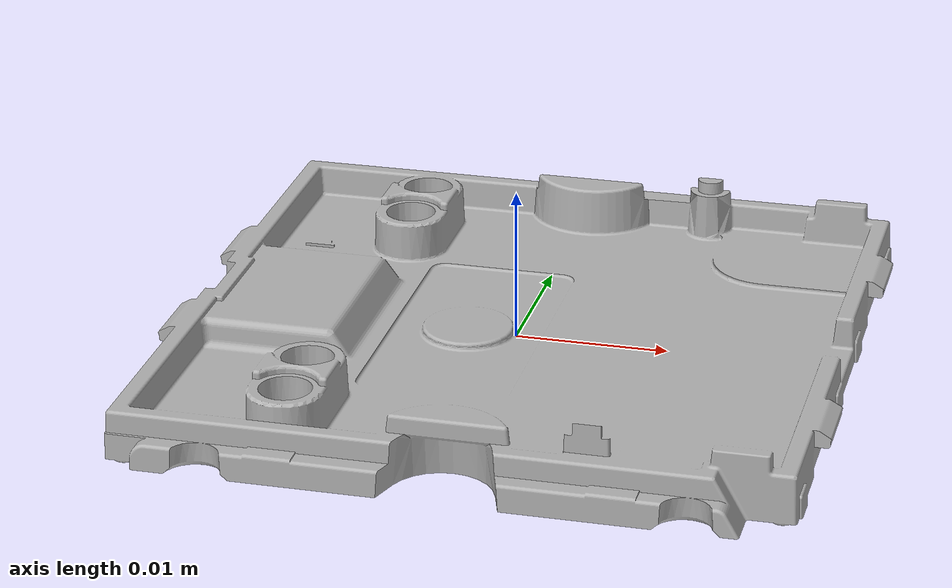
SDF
<?xml version="1.0" ?>
<sdf version="1.5">

    <!-- A global light source -->

<model name="bottom_switch">
  <!-- Give the base link a unique name -->
  <link name="bottom_switch">

    <!-- Offset the base by half the lenght of the cylinder -->
    <pose>0 0 0 0 0 0</pose>

    <collision name="bottom_switch">
	<pose>0 0 0 0 0 0</pose>
      <geometry>
    <mesh>
      <uri>model://bottom_switch/meshes/bottom_switch.dae </uri>
    </mesh>
      </geometry>
    </collision>

<visual name="bottom_switch_visual">
  <!-- Offset the visual by have the base's height. We are not rotating
       mesh since symmetrical -->
  <pose>0 0 0 0 0 0</pose>
  <geometry>
    <mesh>
      <uri>model://bottom_switch/meshes/bottom_switch.dae </uri>
    </mesh>
  </geometry>
</visual>
 </link>
<static>true</static>
</model>
</sdf>
